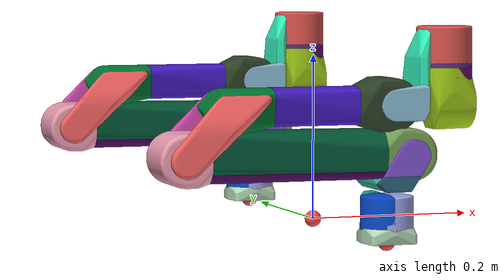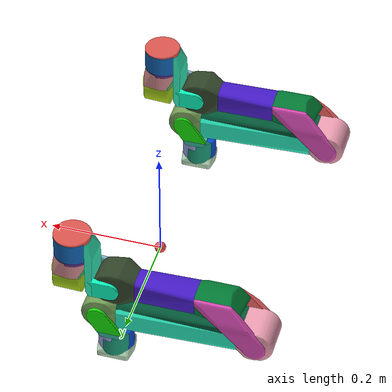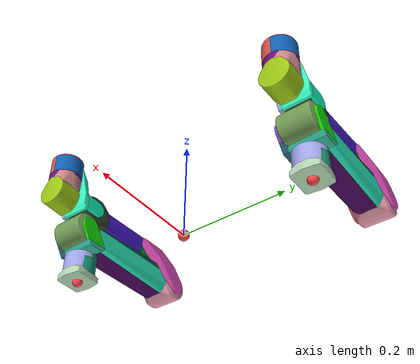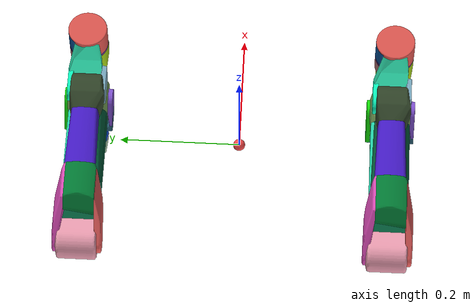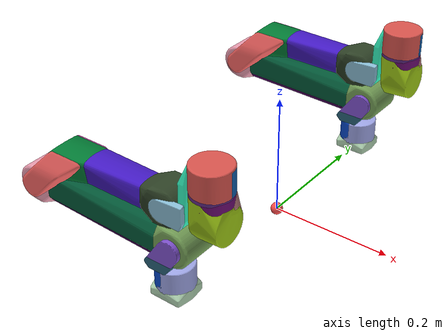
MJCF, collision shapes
<mujoco model="Dual X5a">
  <compiler angle="radian"/>
  <asset>
    <material name="black_metal" specular="0.5" shininess="0.09604875199999999"
              rgba="0.030034 0.030034 0.030034 1.000000"/>
    <material name="grey_metal" specular="0.5" shininess="0.09604875199999999"
              rgba="0.081647 0.081647 0.081647 1.000000"/>
    <material name="white_metal" specular="0.5" shininess="0.25" rgba="0.800000 0.800000 0.800000 1.000000"/>

    <!-- base link -->
    <mesh name="base_link" file="meshes/base_link/base_link.obj"/>
    <mesh name="base_link_collision_0" file="meshes/base_link/base_link_collision_0.obj"/>
    <mesh name="base_link_collision_1" file="meshes/base_link/base_link_collision_1.obj" scale="1 1 0.9"/>
    <mesh name="base_link_collision_2" file="meshes/base_link/base_link_collision_2.obj" scale="1 1 0.9"/>
    <mesh name="base_link_collision_3" file="meshes/base_link/base_link_collision_3.obj" scale="1 1 0.9"/>
    <mesh name="base_link_collision_4" file="meshes/base_link/base_link_collision_4.obj" scale="1 1 0.9"/>

    <!-- link1 -->
    <mesh name="link1" file="meshes/link1/link1.obj"/>
    <mesh name="link1_collision_0" file="meshes/link1/link1_collision_0.obj"/>
    <mesh name="link1_collision_1" file="meshes/link1/link1_collision_1.obj"/>
    <mesh name="link1_collision_2" file="meshes/link1/link1_collision_2.obj"/>
    <mesh name="link1_collision_3" file="meshes/link1/link1_collision_3.obj"/>
    <mesh name="link1_collision_4" file="meshes/link1/link1_collision_4.obj"/>

    <!-- link2 -->
    <mesh name="link2" file="meshes/link2/link2.obj"/>
    <mesh name="link2_collision_0" file="meshes/link2/link2_collision_0.obj"/>
    <mesh name="link2_collision_1" file="meshes/link2/link2_collision_1.obj"/>
    <mesh name="link2_collision_2" file="meshes/link2/link2_collision_2.obj"/>
    <mesh name="link2_collision_3" file="meshes/link2/link2_collision_3.obj"/>
    <mesh name="link2_collision_4" file="meshes/link2/link2_collision_4.obj"/>

    <!-- link3 -->
    <mesh name="link3_0" file="meshes/link3/link3_0.obj"/>
    <mesh name="link3_1" file="meshes/link3/link3_1.obj"/>
    <mesh name="link3_collision_0" file="meshes/link3/link3_collision_0.obj"/>
    <mesh name="link3_collision_1" file="meshes/link3/link3_collision_1.obj"/>
    <mesh name="link3_collision_2" file="meshes/link3/link3_collision_2.obj"/>
    <mesh name="link3_collision_3" file="meshes/link3/link3_collision_3.obj"/>
    <mesh name="link3_collision_4" file="meshes/link3/link3_collision_4.obj"/>

    <!-- link4 -->
    <mesh name="link4_0" file="meshes/link4/link4_0.obj"/>
    <mesh name="link4_1" file="meshes/link4/link4_1.obj"/>
    <mesh name="link4_collision_0" file="meshes/link4/link4_collision_0.obj"/>
    <mesh name="link4_collision_1" file="meshes/link4/link4_collision_1.obj"/>
    <mesh name="link4_collision_2" file="meshes/link4/link4_collision_2.obj"/>
    <mesh name="link4_collision_3" file="meshes/link4/link4_collision_3.obj"/>
    <mesh name="link4_collision_4" file="meshes/link4/link4_collision_4.obj"/>

    <!-- link5 -->
    <mesh name="link5" file="meshes/link5/link5.obj"/>
    <mesh name="link5_collision_0" file="meshes/link5/link5_collision_0.obj"/>
    <mesh name="link5_collision_1" file="meshes/link5/link5_collision_1.obj"/>
    <mesh name="link5_collision_2" file="meshes/link5/link5_collision_2.obj"/>
    <mesh name="link5_collision_3" file="meshes/link5/link5_collision_3.obj"/>
    <mesh name="link5_collision_4" file="meshes/link5/link5_collision_4.obj"/>
  </asset>

  <default>
    <default class="visual">
      <geom group="1" type="mesh" contype="0" conaffinity="0"/>
    </default>
    <default class="collision">
      <geom group="0" type="mesh"/>
    </default>
    <default class="arx">
      <joint damping="0.1" frictionloss="0.001" actuatorfrcrange="-100 100" limited="true"/>
    </default>
  </default>

  <actuator>
    <!-- Physical limits of the actuator. -->
    <motor ctrllimited="true" ctrlrange="-100.0 100.0" joint="right_joint1" name="torq_right_j1"/>
    <motor ctrllimited="true" ctrlrange="-100.0 100.0" joint="right_joint2" name="torq_right_j2"/>
    <motor ctrllimited="true" ctrlrange="-100.0 100.0" joint="right_joint3" name="torq_right_j3"/>
    <motor ctrllimited="true" ctrlrange="-100.0 100.0" joint="right_joint4" name="torq_right_j4"/>
    <motor ctrllimited="true" ctrlrange="-100.0 100.0" joint="right_joint5" name="torq_right_j5"/>
    <motor ctrllimited="true" ctrlrange="-100.0 100.0" joint="right_joint6" name="torq_right_j6"/>
    <motor ctrllimited="true" ctrlrange="-100.0 100.0" joint="left_joint1" name="torq_left_j1"/>
    <motor ctrllimited="true" ctrlrange="-100.0 100.0" joint="left_joint2" name="torq_left_j2"/>
    <motor ctrllimited="true" ctrlrange="-100.0 100.0" joint="left_joint3" name="torq_left_j3"/>
    <motor ctrllimited="true" ctrlrange="-100.0 100.0" joint="left_joint4" name="torq_left_j4"/>
    <motor ctrllimited="true" ctrlrange="-100.0 100.0" joint="left_joint5" name="torq_left_j5"/>
    <motor ctrllimited="true" ctrlrange="-100.0 100.0" joint="left_joint6" name="torq_left_j6"/>
  </actuator>

  <worldbody>
    <body name="base" pos="0 0 0">
      <site name="center" pos="0 0 0" size="0.01" rgba="1 0.3 0.3 1" group="2"/>
      <camera mode="fixed" name="robotview" pos="1.0 0 0.4" quat="0.653 0.271 0.271 0.653"/>
      <body name="base_link">
        <body name="right_arm_mount" pos="0 0.25 0">
          <inertial diaginertia="0.00019 0.00019 0.00020" mass="0.42272" pos="-0.00013359 6.672E-05 0.031672"/>
          <site name="right_center" pos="0 0 0" size="0.01" rgba="1 0.3 0.3 1" group="2"/>
          <geom material="black_metal" mesh="base_link" class="visual"/>
          <geom mesh="base_link_collision_0" rgba="0.7165757750431714 0.862003632144735 0.7244675260217455 1"
                class="collision"/>
          <geom mesh="base_link_collision_1" rgba="0.6341655885458215 0.6633991668734063 0.9230585696574752 1"
                class="collision"/>
          <geom mesh="base_link_collision_2" rgba="0.030555679164755656 0.29053456661071986 0.8147535916774412 1"
                class="collision"/>
          <geom mesh="base_link_collision_3" rgba="0.30169553670250493 0.07005708900903262 0.5572103106940014 1"
                class="collision"/>
          <geom mesh="base_link_collision_4" rgba="0.10056947341620581 0.6101902058529596 0.47509048495419226 1"
                class="collision"/>
          <body name="right_link1" pos="0 0 0.0605">
            <inertial pos="0.0054231 -0.0080289 0.017086" quat="0.653281 0.653281 -0.270598 0.270598" mass="0.066982"
                      diaginertia="9e-05 7e-05 3e-05"/>
            <joint name="right_joint1" pos="0 0 0" axis="0 0 1" range="-2.87 3.14" class="arx"/>
            <geom material="grey_metal" mesh="link1" class="visual"/>
            <geom mesh="link1_collision_0" rgba="0.0849879002357069 0.8963423441860855 0.04109140856023619 1"
                  class="collision"/>
            <geom mesh="link1_collision_1" rgba="0.1611398104954942 0.3826489104245533 0.4717918387336575 1"
                  class="collision"/>
            <geom mesh="link1_collision_2" rgba="0.5069791539019413 0.32608214140281166 0.8230841330582305 1"
                  class="collision"/>
            <geom mesh="link1_collision_3" rgba="0.20166332730175518 0.7185697120587208 0.5957152628063659 1"
                  class="collision"/>
            <geom mesh="link1_collision_4" rgba="0.1775880623151419 0.2133186637750183 0.32572388437292876 1"
                  class="collision"/>
            <body name="right_link2" pos="0.02 0 0.04">
              <inertial pos="-0.13237 0.0020852 0.00010549" quat="7.64729e-05 0.706196 -0.000379919 0.708016"
                        mass="1.0795"
                        diaginertia="0.0160501 0.01599 0.000509891"/>
              <joint name="right_joint2" pos="0 0 0" axis="0 1 0" range="0 3.66" class="arx"/>
              <geom material="black_metal" mesh="link2" class="visual"/>
              <geom mesh="link2_collision_0" rgba="0.2816096673401022 0.01985258790603983 0.3534599732523569 1"
                    class="collision"/>
              <geom mesh="link2_collision_1" rgba="0.00602189987272983 0.34184525790999665 0.21344357992688956 1"
                    class="collision"/>
              <geom mesh="link2_collision_2" rgba="0.45738784052119674 0.6267825194361388 0.34188018531759523 1"
                    class="collision"/>
              <geom mesh="link2_collision_3" rgba="0.15770796083858907 0.9247341055561358 0.7537126159181592 1"
                    class="collision"/>
              <geom mesh="link2_collision_4" rgba="0.9348842700323678 0.6230194729696628 0.7011827585518209 1"
                    class="collision"/>
              <body name="right_link3" pos="-0.264 0 0" quat="-3.67321e-06 1 0 0">
                <inertial pos="0.18531 0.00068376 -0.051638" quat="0.223261 0.638184 0.206685 0.707218" mass="0.54534"
                          diaginertia="0.00424842 0.004221 0.000320578"/>
                <joint name="right_joint3" pos="0 0 0" axis="0 1 0" range="0 3.14" class="arx"/>
                <geom mesh="link3_0" material="black_metal" class="visual"/>
                <geom mesh="link3_1" material="white_metal" class="visual"/>
                <geom mesh="link3_collision_0" rgba="0.2719578765499713 0.10214182596624444 0.7826067871229352 1"
                      class="collision"/>
                <geom mesh="link3_collision_1" rgba="0.1879093320068751 0.26432682309111477 0.15649009546484738 1"
                      class="collision"/>
                <geom mesh="link3_collision_2" rgba="0.865196138661107 0.3017925377143891 0.7202689514080066 1"
                      class="collision"/>
                <geom mesh="link3_collision_3" rgba="0.004156902773712612 0.4846218617579561 0.20500927437481775 1"
                      class="collision"/>
                <geom mesh="link3_collision_4" rgba="0.9884362447859745 0.4052080053466247 0.399416867790228 1"
                      class="collision"/>
                <body name="right_link4" pos="0.245 0 -0.056">
                  <inertial pos="0.040231 0.0044807 -0.035335" quat="0.911288 -0.0751532 0.308689 -0.261949"
                            mass="0.11714"
                            diaginertia="0.000275643 0.00021286 7.14977e-05"/>
                  <joint name="right_joint4" pos="0 0 0" axis="0 1 0" range="-1.57 1.57" class="arx"/>
                  <geom mesh="link4_0" material="black_metal" class="visual"/>
                  <geom mesh="link4_1" material="grey_metal" class="visual"/>
                  <geom mesh="link4_collision_0" rgba="0.20889529912271854 0.9924475256091798 0.776772541730282 1"
                        class="collision"/>
                  <geom mesh="link4_collision_1" rgba="0.8617901177782307 0.33414437134275143 0.3092847540149457 1"
                        class="collision"/>
                  <geom mesh="link4_collision_2" rgba="0.5359813899338022 0.7380412269471118 0.8323364470542368 1"
                        class="collision"/>
                  <geom mesh="link4_collision_3" rgba="0.06376370494060968 0.38676483199051137 0.7062034216992847 1"
                        class="collision"/>
                  <geom mesh="link4_collision_4" rgba="0.04225590361145526 0.9694891873439975 0.7437311675071421 1"
                        class="collision"/>
                  <body name="right_link5" pos="0.06775 0.0005 -0.0865">
                    <inertial pos="0.003612 -1.5455e-05 0.055214" quat="0.998188 0 -0.0601752 0" mass="0.63488"
                              diaginertia="0.000838471 0.00082 0.000251529"/>
                    <joint name="right_joint5" pos="0 0 0" axis="0 0 1" range="-1.57 1.57" class="arx"/>
                    <geom material="black_metal" mesh="link5" class="visual"/>
                    <geom mesh="link5_collision_0" rgba="0.6299408182888969 0.7996640792904464 0.08223384165950631 1"
                          class="collision"/>
                    <geom mesh="link5_collision_1" rgba="0.37418754018378186 0.16193698185877958 0.5223253243951116 1"
                          class="collision"/>
                    <geom mesh="link5_collision_2" rgba="0.20740895214639365 0.6547935569609595 0.3574228942684876 1"
                          class="collision"/>
                    <geom mesh="link5_collision_3" rgba="0.4393132270593527 0.048087456924648664 0.4656160253481807 1"
                          class="collision"/>
                    <geom mesh="link5_collision_4" rgba="0.8159360945297168 0.5334088131821748 0.5446533003673889 1"
                          class="collision"/>
                    <body name="right_link6" pos="0.02895 0 0.0865" quat="-3.67321e-06 -1 0 0">
                      <inertial pos="0.041697 2.4368e-05 0.00014464" quat="0.5 0.5 -0.5 0.5" mass="0.44089"
                                diaginertia="0.0005 0.00038 0.00028"/>
                      <joint name="right_joint6" pos="0 0 0" axis="1 0 0" range="-1.57 1.57" class="arx"/>
                      <body name="right_hand" pos="0.0 0.0 0.0" quat="0 0.7071 0 0.7071">
                        <camera mode="fixed" name="eye_in_hand" pos="0.06 0 0.05" quat="0 0.707108 0.707108 0"
                                fovy="75"/>
                      </body>
                    </body>
                  </body>
                </body>
              </body>
            </body>
          </body>
        </body>
        <body name="left_arm_mount" pos="0 -0.25 0">
          <inertial diaginertia="0.00019 0.00019 0.00020" mass="0.42272" pos="-0.00013359 6.672E-05 0.031672"/>
          <site name="left_center" pos="0 0 0" size="0.01" rgba="1 0.3 0.3 1" group="2"/>
          <geom material="black_metal" mesh="base_link" class="visual"/>
          <geom mesh="base_link_collision_0" rgba="0.7165757750431714 0.862003632144735 0.7244675260217455 1"
                class="collision"/>
          <geom mesh="base_link_collision_1" rgba="0.6341655885458215 0.6633991668734063 0.9230585696574752 1"
                class="collision"/>
          <geom mesh="base_link_collision_2" rgba="0.030555679164755656 0.29053456661071986 0.8147535916774412 1"
                class="collision"/>
          <geom mesh="base_link_collision_3" rgba="0.30169553670250493 0.07005708900903262 0.5572103106940014 1"
                class="collision"/>
          <geom mesh="base_link_collision_4" rgba="0.10056947341620581 0.6101902058529596 0.47509048495419226 1"
                class="collision"/>
          <body name="left_link1" pos="0 0 0.0605">
            <inertial pos="0.0054231 -0.0080289 0.017086" quat="0.653281 0.653281 -0.270598 0.270598" mass="0.066982"
                      diaginertia="9e-05 7e-05 3e-05"/>
            <joint name="left_joint1" pos="0 0 0" axis="0 0 1" range="-2.87 3.14" class="arx"/>
            <geom material="grey_metal" mesh="link1" class="visual"/>
            <geom mesh="link1_collision_0" rgba="0.0849879002357069 0.8963423441860855 0.04109140856023619 1"
                  class="collision"/>
            <geom mesh="link1_collision_1" rgba="0.1611398104954942 0.3826489104245533 0.4717918387336575 1"
                  class="collision"/>
            <geom mesh="link1_collision_2" rgba="0.5069791539019413 0.32608214140281166 0.8230841330582305 1"
                  class="collision"/>
            <geom mesh="link1_collision_3" rgba="0.20166332730175518 0.7185697120587208 0.5957152628063659 1"
                  class="collision"/>
            <geom mesh="link1_collision_4" rgba="0.1775880623151419 0.2133186637750183 0.32572388437292876 1"
                  class="collision"/>
            <body name="left_link2" pos="0.02 0 0.04">
              <inertial pos="-0.13237 0.0020852 0.00010549" quat="7.64729e-05 0.706196 -0.000379919 0.708016"
                        mass="1.0795"
                        diaginertia="0.0160501 0.01599 0.000509891"/>
              <joint name="left_joint2" pos="0 0 0" axis="0 1 0" range="0 3.66" class="arx"/>
              <geom material="black_metal" mesh="link2" class="visual"/>
              <geom mesh="link2_collision_0" rgba="0.2816096673401022 0.01985258790603983 0.3534599732523569 1"
                    class="collision"/>
              <geom mesh="link2_collision_1" rgba="0.00602189987272983 0.34184525790999665 0.21344357992688956 1"
                    class="collision"/>
              <geom mesh="link2_collision_2" rgba="0.45738784052119674 0.6267825194361388 0.34188018531759523 1"
                    class="collision"/>
              <geom mesh="link2_collision_3" rgba="0.15770796083858907 0.9247341055561358 0.7537126159181592 1"
                    class="collision"/>
              <geom mesh="link2_collision_4" rgba="0.9348842700323678 0.6230194729696628 0.7011827585518209 1"
                    class="collision"/>
              <body name="left_link3" pos="-0.264 0 0" quat="-3.67321e-06 1 0 0">
                <inertial pos="0.18531 0.00068376 -0.051638" quat="0.223261 0.638184 0.206685 0.707218" mass="0.54534"
                          diaginertia="0.00424842 0.004221 0.000320578"/>
                <joint name="left_joint3" pos="0 0 0" axis="0 1 0" range="0 3.14" class="arx"/>
                <geom mesh="link3_0" material="black_metal" class="visual"/>
                <geom mesh="link3_1" material="white_metal" class="visual"/>
                <geom mesh="link3_collision_0" rgba="0.2719578765499713 0.10214182596624444 0.7826067871229352 1"
                      class="collision"/>
                <geom mesh="link3_collision_1" rgba="0.1879093320068751 0.26432682309111477 0.15649009546484738 1"
                      class="collision"/>
                <geom mesh="link3_collision_2" rgba="0.865196138661107 0.3017925377143891 0.7202689514080066 1"
                      class="collision"/>
                <geom mesh="link3_collision_3" rgba="0.004156902773712612 0.4846218617579561 0.20500927437481775 1"
                      class="collision"/>
                <geom mesh="link3_collision_4" rgba="0.9884362447859745 0.4052080053466247 0.399416867790228 1"
                      class="collision"/>
                <body name="left_link4" pos="0.245 0 -0.056">
                  <inertial pos="0.040231 0.0044807 -0.035335" quat="0.911288 -0.0751532 0.308689 -0.261949"
                            mass="0.11714"
                            diaginertia="0.000275643 0.00021286 7.14977e-05"/>
                  <joint name="left_joint4" pos="0 0 0" axis="0 1 0" range="-1.57 1.57" class="arx"/>
                  <geom mesh="link4_0" material="black_metal" class="visual"/>
                  <geom mesh="link4_1" material="grey_metal" class="visual"/>
                  <geom mesh="link4_collision_0" rgba="0.20889529912271854 0.9924475256091798 0.776772541730282 1"
                        class="collision"/>
                  <geom mesh="link4_collision_1" rgba="0.8617901177782307 0.33414437134275143 0.3092847540149457 1"
                        class="collision"/>
                  <geom mesh="link4_collision_2" rgba="0.5359813899338022 0.7380412269471118 0.8323364470542368 1"
                        class="collision"/>
                  <geom mesh="link4_collision_3" rgba="0.06376370494060968 0.38676483199051137 0.7062034216992847 1"
                        class="collision"/>
                  <geom mesh="link4_collision_4" rgba="0.04225590361145526 0.9694891873439975 0.7437311675071421 1"
                        class="collision"/>
                  <body name="left_link5" pos="0.06775 0.0005 -0.0865">
                    <inertial pos="0.003612 -1.5455e-05 0.055214" quat="0.998188 0 -0.0601752 0" mass="0.63488"
                              diaginertia="0.000838471 0.00082 0.000251529"/>
                    <joint name="left_joint5" pos="0 0 0" axis="0 0 1" range="-1.57 1.57" class="arx"/>
                    <geom material="black_metal" mesh="link5" class="visual"/>
                    <geom mesh="link5_collision_0" rgba="0.6299408182888969 0.7996640792904464 0.08223384165950631 1"
                          class="collision"/>
                    <geom mesh="link5_collision_1" rgba="0.37418754018378186 0.16193698185877958 0.5223253243951116 1"
                          class="collision"/>
                    <geom mesh="link5_collision_2" rgba="0.20740895214639365 0.6547935569609595 0.3574228942684876 1"
                          class="collision"/>
                    <geom mesh="link5_collision_3" rgba="0.4393132270593527 0.048087456924648664 0.4656160253481807 1"
                          class="collision"/>
                    <geom mesh="link5_collision_4" rgba="0.8159360945297168 0.5334088131821748 0.5446533003673889 1"
                          class="collision"/>
                    <body name="left_link6" pos="0.02895 0 0.0865" quat="-3.67321e-06 -1 0 0">
                      <inertial pos="0.041697 2.4368e-05 0.00014464" quat="0.5 0.5 -0.5 0.5" mass="0.44089"
                                diaginertia="0.0005 0.00038 0.00028"/>
                      <joint name="left_joint6" pos="0 0 0" axis="1 0 0" range="-1.57 1.57" class="arx"/>
                      <body name="left_hand" pos="0.0 0.0 0.0" quat="0 0.7071 0 0.7071">
                        <camera mode="fixed" name="left_eye_in_hand" pos="0.06 0 0.05" quat="0 0.707108 0.707108 0"
                                fovy="75"/>
                      </body>
                    </body>
                  </body>
                </body>
              </body>
            </body>
          </body>
        </body>
      </body>
    </body>
  </worldbody>
</mujoco>
